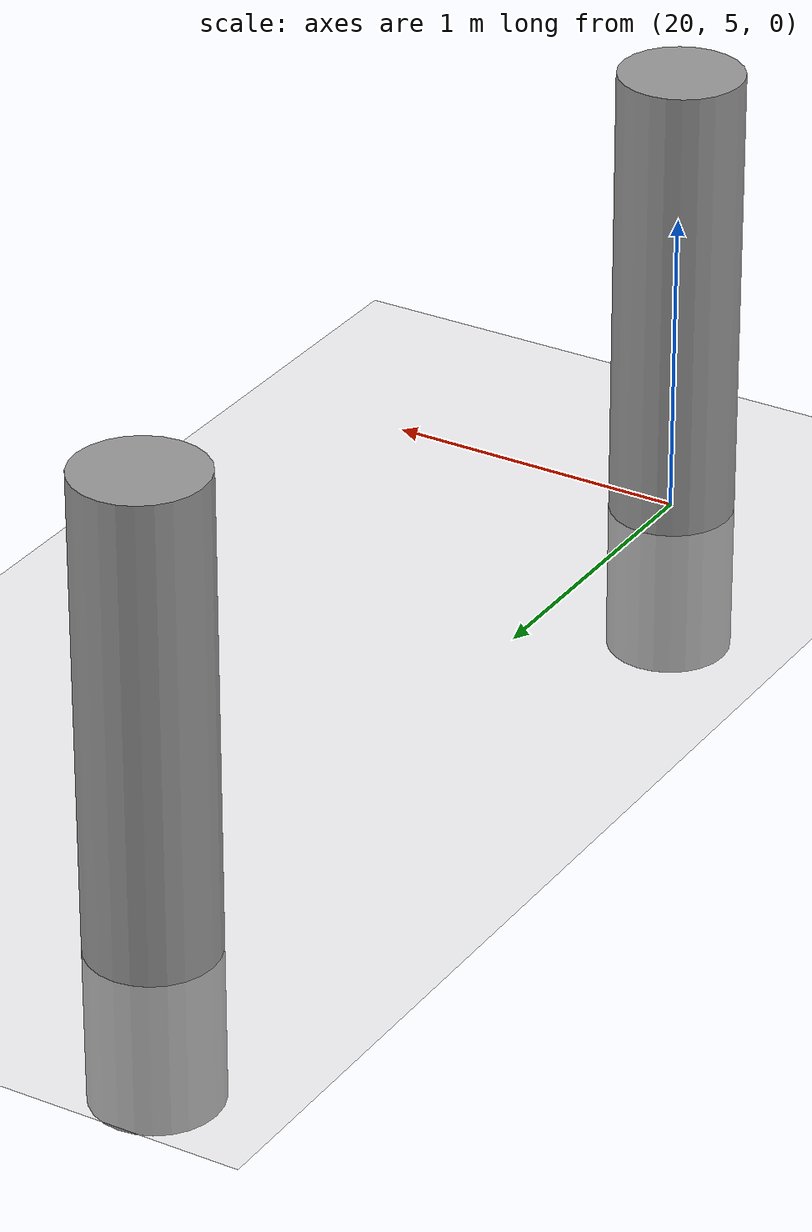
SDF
<?xml version="1.0" ?>
<sdf version="1.4">
  <world name="default">
    <!-- A global light source -->
    <include>
      <uri>model://sun</uri>
    </include>
    <!-- A ground plane -->
    <include>
      <uri>model://ground_plane</uri>
    </include>
    <!-- 2nd Cylinder -->
    <model name='unit_cylinder'>
      <pose frame=''>20 5 0.5 0 -0 0</pose>
      <link name='link'>
        <inertial>
          <mass>1</mass>
          <inertia>
            <ixx>0.145833</ixx>
            <ixy>0</ixy>
            <ixz>0</ixz>
            <iyy>0.145833</iyy>
            <iyz>0</iyz>
            <izz>0.125</izz>
          </inertia>
        </inertial>
        <collision name='collision'>
          <geometry>
            <cylinder>
              <radius>0.2</radius>
              <length>2</length>
            </cylinder>
          </geometry>
          <max_contacts>10</max_contacts>
        </collision>
        <visual name='visual'>
          <geometry>
            <cylinder>
              <radius>0.2</radius>
              <length>2</length>
            </cylinder>
          </geometry>
          <material>
            <script>
              <name>Gazebo/Grey</name>
              <uri>file://media/materials/scripts/gazebo.material</uri>
            </script>
          </material>
        </visual>
        <self_collide>0</self_collide>
        <kinematic>0</kinematic>
      </link>
    </model>

    <!-- 1st Cylinder -->
    <model name='unit_cylinder'>
      <pose frame=''>20 8 0.5 0 -0 0</pose>
      <link name='link'>
        <inertial>
          <mass>1</mass>
          <inertia>
            <ixx>0.145833</ixx>
            <ixy>0</ixy>
            <ixz>0</ixz>
            <iyy>0.145833</iyy>
            <iyz>0</iyz>
            <izz>0.125</izz>
          </inertia>
        </inertial>
        <collision name='collision'>
          <geometry>
            <cylinder>
              <radius>0.2</radius>
              <length>2</length>
            </cylinder>
          </geometry>
          <max_contacts>10</max_contacts>
        </collision>
        <visual name='visual'>
          <geometry>
            <cylinder>
              <radius>0.2</radius>
              <length>2</length>
            </cylinder>
          </geometry>
          <material>
            <script>
              <name>Gazebo/Grey</name>
              <uri>file://media/materials/scripts/gazebo.material</uri>
            </script>
          </material>
        </visual>
        <self_collide>0</self_collide>
        <kinematic>0</kinematic>
      </link>
    </model>

  </world>
</sdf>
